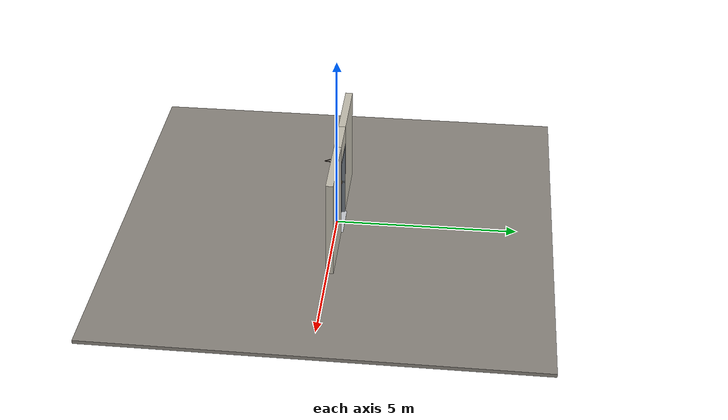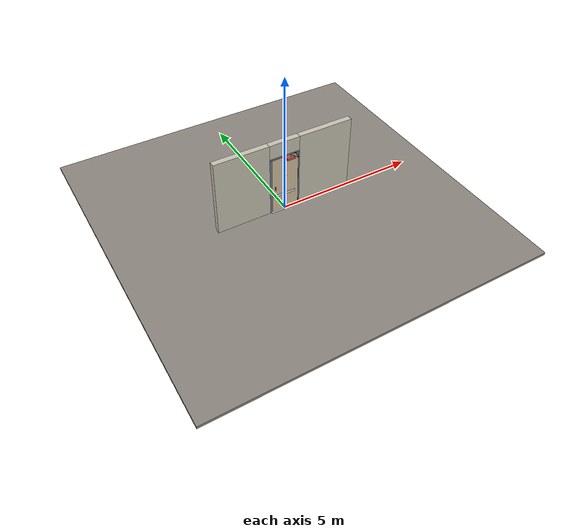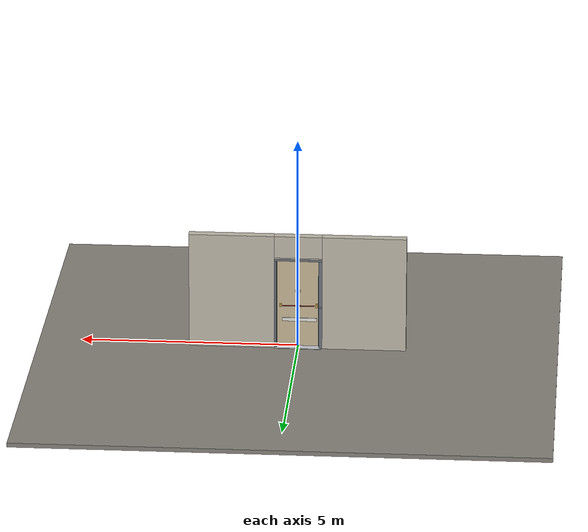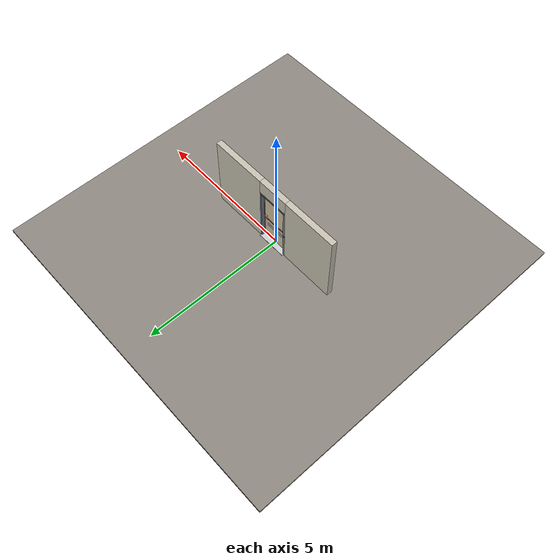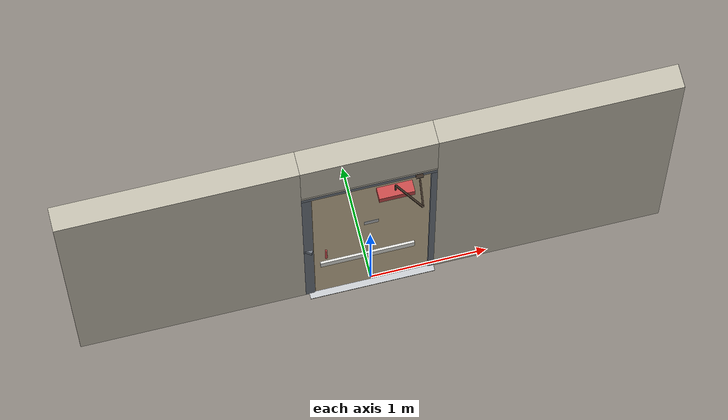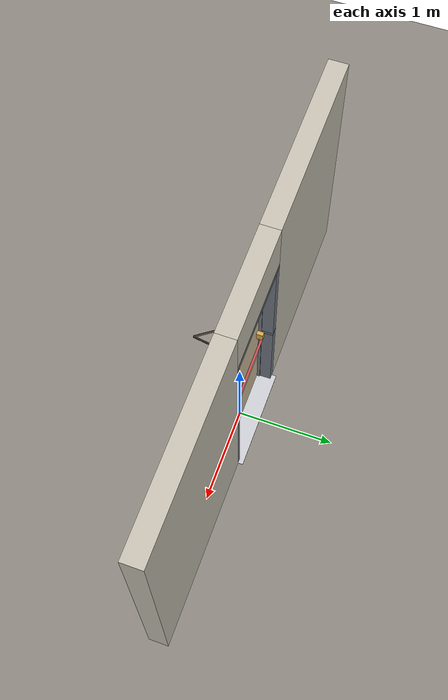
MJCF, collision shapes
<?xml version="1.0" ?>
<mujoco model="db0145_swing_single_full">
  <compiler angle="radian" meshdir="../../hardware" texturedir="../../textures" autolimits="true" inertiafromgeom="false"/>
  <option timestep="0.002" integrator="implicitfast" cone="elliptic" impratio="10" noslip_iterations="3">
    <flag multiccd="enable"/>
  </option>
  <size memory="16M"/>
  <default>
    <geom condim="4" solref="0.005 1" solimp="0.95 0.99 0.001"/>
    <joint solreflimit="0.005 1" solimplimit="0.95 0.99 0.001"/>
    <tendon solreflimit="0.005 1"/>
    <equality solref="0.002 1"/>
  </default>
  <visual>
    <headlight ambient="0.4 0.4 0.4" diffuse="0.7 0.7 0.7" specular="0.2 0.2 0.2"/>
    <quality shadowsize="4096"/>
    <map znear="0.01" zfar="60"/>
  </visual>
  <asset>
    <mesh name="closer_body_fdc4667657" file="closer_body_fdc4667657.obj"/>
    <mesh name="crossbar_ede2eedf24" file="crossbar_ede2eedf24.obj"/>
    <mesh name="hinge_e22b26c0c1" file="hinge_e22b26c0c1.obj"/>
    <mesh name="hinge_jamb_e1d088f8dc" file="hinge_jamb_e1d088f8dc.obj"/>
    <mesh name="pull_1e5d69a91a" file="pull_1e5d69a91a.obj"/>
    <material name="mat_floor" rgba="0.55 0.53 0.5 1" specular="0.2" shininess="0.15" reflectance="0"/>
    <material name="mat_wall" rgba="0.78 0.76 0.7 1" specular="0.2" shininess="0.1" reflectance="0"/>
    <material name="mat_leaf" rgba="0.82 0.75 0.62 1" specular="0.23" shininess="0.64" reflectance="0.02"/>
    <material name="mat_hinge" rgba="0.65 0.66 0.68 1" specular="0.74" shininess="0.5" reflectance="0.36"/>
    <material name="mat_op_brass" rgba="0.85 0.66 0.3 1" specular="0.8" shininess="0.75" reflectance="0.4"/>
    <material name="mat_op_stainless" rgba="0.75 0.76 0.77 1" specular="0.8" shininess="0.65" reflectance="0.4"/>
    <material name="mat_bolt" rgba="0.75 0.76 0.77 1" specular="0.8" shininess="0.65" reflectance="0.4"/>
    <material name="mat_frame" rgba="0.45 0.48 0.52 1" specular="0.32" shininess="0.6" reflectance="0.08"/>
    <material name="mat_seal" rgba="0.1 0.1 0.1 1" specular="0.2" shininess="0.1" reflectance="0"/>
    <material name="mat_threshold" rgba="0.8 0.81 0.83 1" specular="0.8" shininess="0.6" reflectance="0.4"/>
    <material name="mat_closer" rgba="0.22 0.17 0.13 1" specular="0.8" shininess="0.6" reflectance="0.4"/>
    <material name="mat_bumper" rgba="0.92 0.92 0.9 1" specular="0.2" shininess="0.6" reflectance="0"/>
    <material name="mat_sign" rgba="0.75 0.76 0.77 1" specular="0.8" shininess="0.65" reflectance="0.4"/>
    <texture name="skybox" type="skybox" builtin="gradient" rgb1="0.6 0.7 0.85" rgb2="0.9 0.92 0.95" width="256" height="256"/>
  </asset>
  <worldbody>
    <light name="sun" pos="1.5 -2.5 4" dir="-0.3 0.5 -0.8" directional="true" diffuse="0.8 0.8 0.8" specular="0.3 0.3 0.3" castshadow="true"/>
    <light name="fill" pos="-1.5 2.5 3" dir="0.3 -0.5 -0.7" directional="true" diffuse="0.35 0.35 0.4" castshadow="false"/>
    <camera name="robot_view" pos="0 -2.566812 1.812087" xyaxes="1 0 0 0 0.26963 0.962964" fovy="52"/>
    <camera name="far_view" pos="0 2.708813 1.812087" xyaxes="-1 0 0 0 -0.26963 0.962964" fovy="52"/>
    <camera name="iso" pos="-2.004737 -2.144762 2.234138" xyaxes="0.741536 -0.670913 0 0.242917 0.268487 0.932151" fovy="46"/>
    <camera name="detail_handle" pos="-0.212 -0.882 1.296" xyaxes="0.97561 0.219512 0 -0.070934 0.315262 0.94635" fovy="38"/>
    <geom name="floor" type="box" size="6 6 0.05" pos="0 0 -0.05" material="mat_floor" group="0" contype="1" conaffinity="1" friction="0.8 0.005 0.0001" density="2400"/>
    <geom name="wall_left" type="box" size="0.967 0.1 1.3735" pos="-1.533 0.071 1.3735" material="mat_wall" group="0" contype="1" conaffinity="1" friction="0.6 0.005 0.0001" density="800"/>
    <geom name="wall_right" type="box" size="0.982 0.1 1.3735" pos="1.518 0.071 1.3735" material="mat_wall" group="0" contype="1" conaffinity="1" friction="0.6 0.005 0.0001" density="800"/>
    <geom name="wall_header" type="box" size="0.551 0.1 0.26" pos="-0.015 0.071 2.487" material="mat_wall" group="0" contype="1" conaffinity="1" friction="0.6 0.005 0.0001" density="800"/>
    <geom name="hinge_0_jamb" type="mesh" mesh="hinge_jamb_e1d088f8dc" pos="0.483 -0.029 0.259" quat="0 0 1 0" material="mat_hinge" group="1" contype="0" conaffinity="0" density="7850"/>
    <geom name="hinge_1_jamb" type="mesh" mesh="hinge_jamb_e1d088f8dc" pos="0.483 -0.029 1.076" quat="0 0 1 0" material="mat_hinge" group="1" contype="0" conaffinity="0" density="7850"/>
    <geom name="hinge_2_jamb" type="mesh" mesh="hinge_jamb_e1d088f8dc" pos="0.483 -0.029 1.963" quat="0 0 1 0" material="mat_hinge" group="1" contype="0" conaffinity="0" density="7850"/>
    <geom name="jamb_hinge" type="box" size="0.025 0.1 1.0735" pos="0.511 0.071 1.0735" material="mat_frame" group="0" contype="1" conaffinity="1" friction="0.6 0.005 0.0001" density="300"/>
    <geom name="strike_1016_wall_n" type="box" size="0.04 0.08 0.02" pos="-0.526 0.091 1.016" material="mat_frame" group="0" contype="1" conaffinity="1" friction="0.6 0.005 0.0001" density="300"/>
    <geom name="strike_1016_wall_p" type="box" size="0.04 0.008 0.02" pos="-0.526 -0.019 1.016" material="mat_frame" group="0" contype="1" conaffinity="1" friction="0.6 0.005 0.0001" density="300"/>
    <geom name="strike_1016_ramp" type="box" size="0.04 0.018028 0.02" pos="-0.529282 -0.019812 1.016" quat="0.957092 0 0 -0.289784" material="mat_frame" group="0" contype="1" conaffinity="1" friction="0.12 0.005 0.0001" density="300"/>
    <geom name="strike_1016_back" type="box" size="0.0285 0.011 0.02" pos="-0.5375 0 1.016" material="mat_frame" group="0" contype="1" conaffinity="1" friction="0.6 0.005 0.0001" density="300"/>
    <geom name="jamb_strike_0" type="box" size="0.04 0.1 0.498" pos="-0.526 0.071 0.498" material="mat_frame" group="0" contype="1" conaffinity="1" friction="0.6 0.005 0.0001" density="300"/>
    <geom name="jamb_strike_1" type="box" size="0.04 0.1 0.5555" pos="-0.526 0.071 1.5915" material="mat_frame" group="0" contype="1" conaffinity="1" friction="0.6 0.005 0.0001" density="300"/>
    <geom name="jamb_head" type="box" size="0.551 0.1 0.025" pos="-0.015 0.071 2.172" material="mat_frame" group="0" contype="1" conaffinity="1" friction="0.6 0.005 0.0001" density="300"/>
    <geom name="head_stud" type="box" size="0.551 0.1 0.015" pos="-0.015 0.071 2.212" material="mat_wall" group="0" contype="1" conaffinity="1" friction="0.6 0.005 0.0001" density="500"/>
    <geom name="stop_hinge" type="box" size="0.0055 0.016 1.0735" pos="0.4805 0.0385 1.0735" material="mat_frame" group="0" contype="1" conaffinity="1" friction="0.6 0.005 0.0001" density="300"/>
    <geom name="stop_strike" type="box" size="0.0055 0.016 1.0735" pos="-0.4805 0.0385 1.0735" material="mat_frame" group="0" contype="1" conaffinity="1" friction="0.6 0.005 0.0001" density="300"/>
    <geom name="stop_head" type="box" size="0.486 0.016 0.0055" pos="0 0.0385 2.1415" material="mat_frame" group="0" contype="1" conaffinity="1" friction="0.6 0.005 0.0001" density="300"/>
    <geom name="seal_hinge" type="box" size="0.004 0.0025 1.0735" pos="0.483 0.0245 1.0735" material="mat_seal" group="1" contype="0" conaffinity="0" density="1100"/>
    <geom name="seal_strike" type="box" size="0.004 0.0025 1.0735" pos="-0.483 0.0245 1.0735" material="mat_seal" group="1" contype="0" conaffinity="0" density="1100"/>
    <geom name="seal_head" type="box" size="0.466 0.0025 0.008" pos="0 0.0245 2.135" material="mat_seal" group="1" contype="0" conaffinity="0" density="1100"/>
    <geom name="threshold" type="box" size="0.536 0.15 0.004" pos="0 0.071 0.004" material="mat_threshold" group="0" contype="1" conaffinity="1" friction="0.6 0.005 0.0001" density="2700"/>
    <geom name="closer_bracket" type="box" size="0.03 0.012 0.014" pos="0.386 -0.041 2.177" material="mat_closer" group="1" contype="0" conaffinity="0" density="2700"/>
    <site name="approach_point" pos="0 -1.5 0" quat="1 0 0 0" size="0.05" rgba="0.2 0.9 0.2 0.5" group="4"/>
    <site name="goal_point" pos="0 1.5 0" quat="1 0 0 0" size="0.05" rgba="0.2 0.9 0.2 0.5" group="4"/>
    <site name="door_plane_center" pos="0 0 1.0735" quat="1 0 0 0" size="0.02" rgba="0.2 0.9 0.2 0.5" group="4"/>
    <body name="leaf" pos="0.486 0 0">
      <inertial pos="-0.447524 -0.014682 1.262153" mass="59.177657" quat="0.522309 -0.518804 -0.467012 -0.489832" diaginertia="4.117891221 26.713441827 30.718399856"/>
      <joint name="leaf_hinge" type="hinge" axis="0 0 1" pos="-0.003 -0.029 0" limited="true" range="0 1.745329" solreflimit="0.02 1" damping="12.334212" frictionloss="2.664939" stiffness="13.025241" springref="-2.475194" armature="0.02"/>
      <geom name="leaf_slab" type="box" size="0.4825 0.022 1.067" pos="-0.4855 0 1.076" material="mat_leaf" group="0" contype="1" conaffinity="1" friction="0.4 0.005 0.0001" density="1"/>
      <geom name="hinge_0" type="mesh" mesh="hinge_e22b26c0c1" pos="-0.003 -0.029 0.259" quat="0 0 1 0" material="mat_hinge" group="1" contype="0" conaffinity="0" density="7850"/>
      <geom name="hinge_1" type="mesh" mesh="hinge_e22b26c0c1" pos="-0.003 -0.029 1.076" quat="0 0 1 0" material="mat_hinge" group="1" contype="0" conaffinity="0" density="7850"/>
      <geom name="hinge_2" type="mesh" mesh="hinge_e22b26c0c1" pos="-0.003 -0.029 1.963" quat="0 0 1 0" material="mat_hinge" group="1" contype="0" conaffinity="0" density="7850"/>
      <geom name="leaf_exit_device_case" type="box" size="0.022 0.033 0.045" pos="-0.923 0.055 1.016" material="mat_op_brass" group="0" contype="1" conaffinity="1" friction="0.6 0.005 0.0001" density="3000"/>
      <geom name="leaf_exit_device_end_case" type="box" size="0.022 0.03 0.035" pos="-0.08925 0.052 1.016" material="mat_op_brass" group="0" contype="1" conaffinity="1" friction="0.6 0.005 0.0001" density="3000"/>
      <geom name="leaf_far_pull_n" type="mesh" mesh="pull_1e5d69a91a" pos="-0.878 -0.022 1.016" quat="0 0 -0.707107 0.707107" material="mat_op_stainless" group="1" contype="0" conaffinity="0" density="3000"/>
      <geom name="leaf_far_pull_col_n" type="capsule" size="0.0095 0.08" pos="-0.878 -0.082 1.016" material="mat_op_stainless" group="3" contype="1" conaffinity="1" rgba="0.8 0.3 0.3 0.25" friction="0.7 0.01 0.0001" density="3000"/>
      <geom name="closer_body" type="mesh" mesh="closer_body_fdc4667657" pos="-0.3 -0.022 2.054" quat="0 0 -0.707107 0.707107" material="mat_closer" group="1" contype="0" conaffinity="0" density="2000"/>
      <geom name="closer_body_col" type="box" size="0.145 0.05 0.035" pos="-0.3 -0.072 2.054" material="mat_closer" group="3" contype="1" conaffinity="1" rgba="0.8 0.3 0.3 0.25" friction="0.6 0.005 0.0001" density="2000"/>
      <geom name="closer_pinion_shaft" type="cylinder" size="0.008 0.0615" pos="-0.3 -0.072 2.1155" material="mat_closer" group="1" contype="0" conaffinity="0" density="2700"/>
      <geom name="bumper_rail_n" type="box" size="0.3975 0.01 0.04" pos="-0.5205 -0.032 0.659" material="mat_bumper" group="0" contype="1" conaffinity="1" friction="0.6 0.005 0.0001" density="1200"/>
      <geom name="bumper_rail_p" type="box" size="0.3975 0.01 0.04" pos="-0.5205 0.032 0.659" material="mat_bumper" group="0" contype="1" conaffinity="1" friction="0.6 0.005 0.0001" density="1200"/>
      <geom name="sign_push" type="box" size="0.06 0.001 0.03" pos="-0.4855 0.023 1.359" material="mat_sign" group="2" contype="0" conaffinity="0" density="7900"/>
      <geom name="sign_pull" type="box" size="0.06 0.001 0.03" pos="-0.4855 -0.023 1.359" material="mat_sign" group="2" contype="0" conaffinity="0" density="7900"/>
      <site name="leaf_far_pull_grip_n" pos="-0.878 -0.082 1.016" quat="1 0 0 0" size="0.012" rgba="0.2 0.9 0.2 0.5" group="4"/>
      <site name="leaf_edge_mid" pos="-0.968 0 1.067" quat="1 0 0 0" size="0.02" rgba="0.2 0.9 0.2 0.5" group="4"/>
      <body name="leaf_exit_device" pos="-0.506125 0.022 1.016">
        <inertial pos="0 0.058039 0" mass="2.32376" quat="0 1 0 0" diaginertia="0.000370211 0.120757534 0.120954646"/>
        <joint name="leaf_exit_device_hinge" type="hinge" axis="-1 0 0" limited="true" range="0 0.35" damping="0.93461" frictionloss="0.14" stiffness="12" springref="-0.333333" armature="0.01"/>
        <geom name="leaf_exit_device_mesh" type="mesh" mesh="crossbar_ede2eedf24" pos="0 0 0" quat="0 0 0.707107 0.707107" material="mat_op_brass" group="1" contype="0" conaffinity="0" density="3000"/>
        <geom name="leaf_exit_device_col" type="capsule" size="0.0125 0.361875" pos="0 0.06 0" quat="0.707107 0 0.707107 0" material="mat_op_brass" group="3" contype="1" conaffinity="1" rgba="0.8 0.3 0.3 0.25" friction="0.7 0.01 0.0001" density="3000"/>
        <site name="leaf_exit_device_push" pos="0 0.06 0" quat="1 0 0 0" size="0.015" rgba="0.2 0.9 0.2 0.5" group="4"/>
      </body>
      <body name="leaf_latch_bolt" pos="-0.968 0 1.016">
        <inertial pos="0.0055 0 0" mass="0.102826" quat="0.92388 0.382683 0 0" diaginertia="0.000004365 0.000018287 0.000018287"/>
        <joint name="leaf_latch_bolt_slide" type="slide" axis="1 0 0" limited="true" range="0 0.019" damping="2" frictionloss="0.3" stiffness="800" springref="-0.01" armature="0.1"/>
        <geom name="leaf_latch_bolt_capsule" type="capsule" size="0.0095 0.015" pos="0.0055 0 0" quat="0.707107 0 -0.707107 0" material="mat_bolt" group="0" contype="1" conaffinity="1" friction="0.2 0.005 0.0001" density="8500"/>
      </body>
      <body name="closer_arm_main" pos="-0.3 -0.072 2.177" quat="0.890947 0 0 -0.454107">
        <inertial pos="0.14 0 0" mass="0.12096" quat="1 0 0 0" diaginertia="0.000003588 0.00079128 0.000792852"/>
        <joint name="closer_pinion" type="hinge" axis="0 0 1" limited="false" damping="0.01" armature="0.002"/>
        <geom name="closer_arm_main_geom" type="box" size="0.14 0.008 0.005" pos="0.14 0 0" material="mat_closer" group="1" contype="0" conaffinity="0" density="2700"/>
        <body name="closer_arm_fore" pos="0.28 0 0" quat="0.373215 0 0 0.927745">
          <inertial pos="0.128088 0 0" mass="0.076531" quat="1 0 0 0" diaginertia="0.000001771 0.000437665 0.000438201"/>
          <joint name="closer_elbow" type="hinge" axis="0 0 1" limited="false" damping="0.01" armature="0.002"/>
          <geom name="closer_arm_fore_geom" type="box" size="0.1125 0.007 0.004" pos="0.1125 0 0" material="mat_closer" group="1" contype="0" conaffinity="0" density="2700"/>
          <geom name="closer_fore_neck" type="box" size="0.0175 0.003 0.003" pos="0.2425 0 0" material="mat_closer" group="1" contype="0" conaffinity="0" density="2700"/>
          <geom name="closer_fore_pivot" type="cylinder" size="0.005 0.012" pos="0.26 0 0" material="mat_closer" group="1" contype="0" conaffinity="0" density="2700"/>
        </body>
      </body>
    </body>
  </worldbody>
  <tendon>
    <fixed name="leaf_latch_bolt_coupling" limited="true" range="0 10">
      <joint joint="leaf_latch_bolt_slide" coef="1"/>
      <joint joint="leaf_exit_device_hinge" coef="-0.059375"/>
    </fixed>
  </tendon>
  <equality>
    <connect name="closer_arm_connect" body1="closer_arm_fore" body2="world" anchor="0.26 0 0" active="true"/>
  </equality>
  <contact>
    <exclude body1="closer_arm_main" body2="leaf"/>
    <exclude body1="closer_arm_fore" body2="leaf"/>
    <exclude body1="closer_arm_main" body2="closer_arm_fore"/>
  </contact>
  <sensor>
    <jointpos name="leaf_hinge_pos" joint="leaf_hinge"/>
    <jointvel name="leaf_hinge_vel" joint="leaf_hinge"/>
    <jointpos name="leaf_exit_device_hinge_pos" joint="leaf_exit_device_hinge"/>
    <jointvel name="leaf_exit_device_hinge_vel" joint="leaf_exit_device_hinge"/>
    <jointpos name="leaf_latch_bolt_slide_pos" joint="leaf_latch_bolt_slide"/>
    <jointvel name="leaf_latch_bolt_slide_vel" joint="leaf_latch_bolt_slide"/>
  </sensor>
</mujoco>
